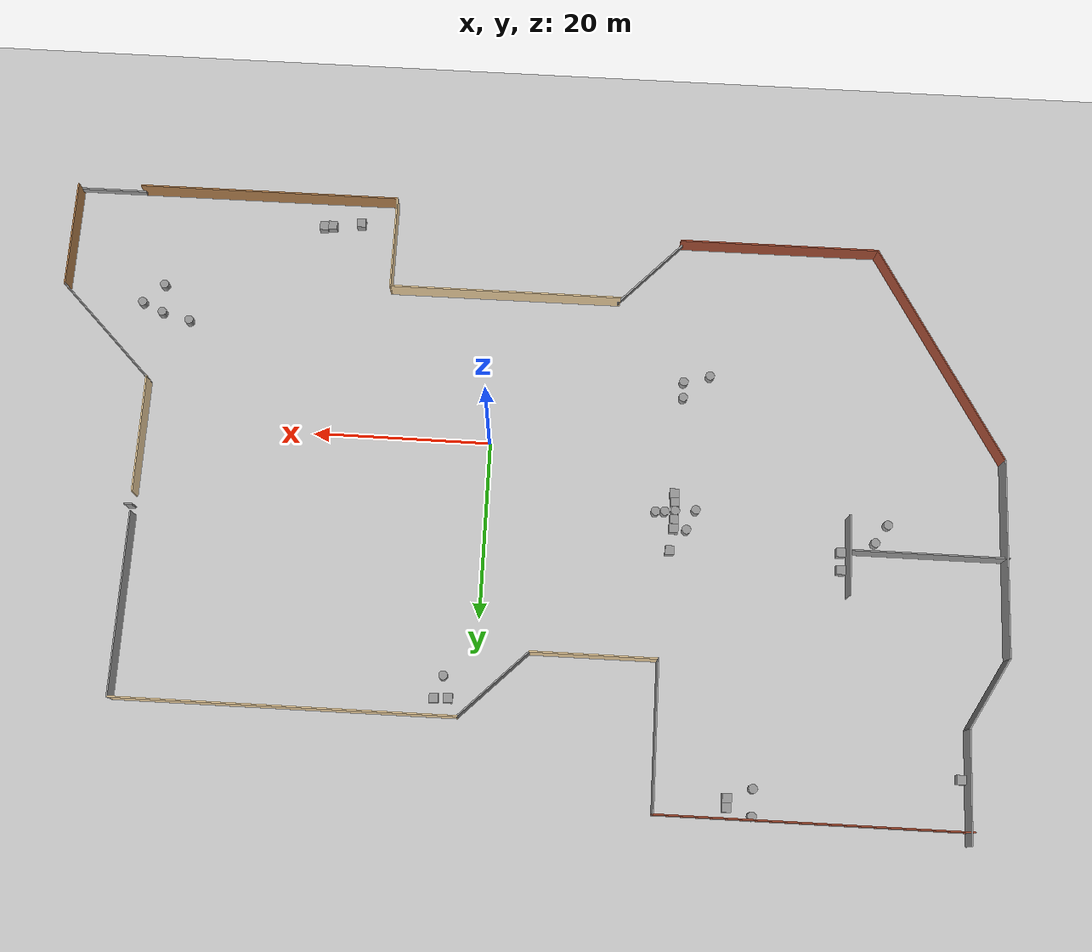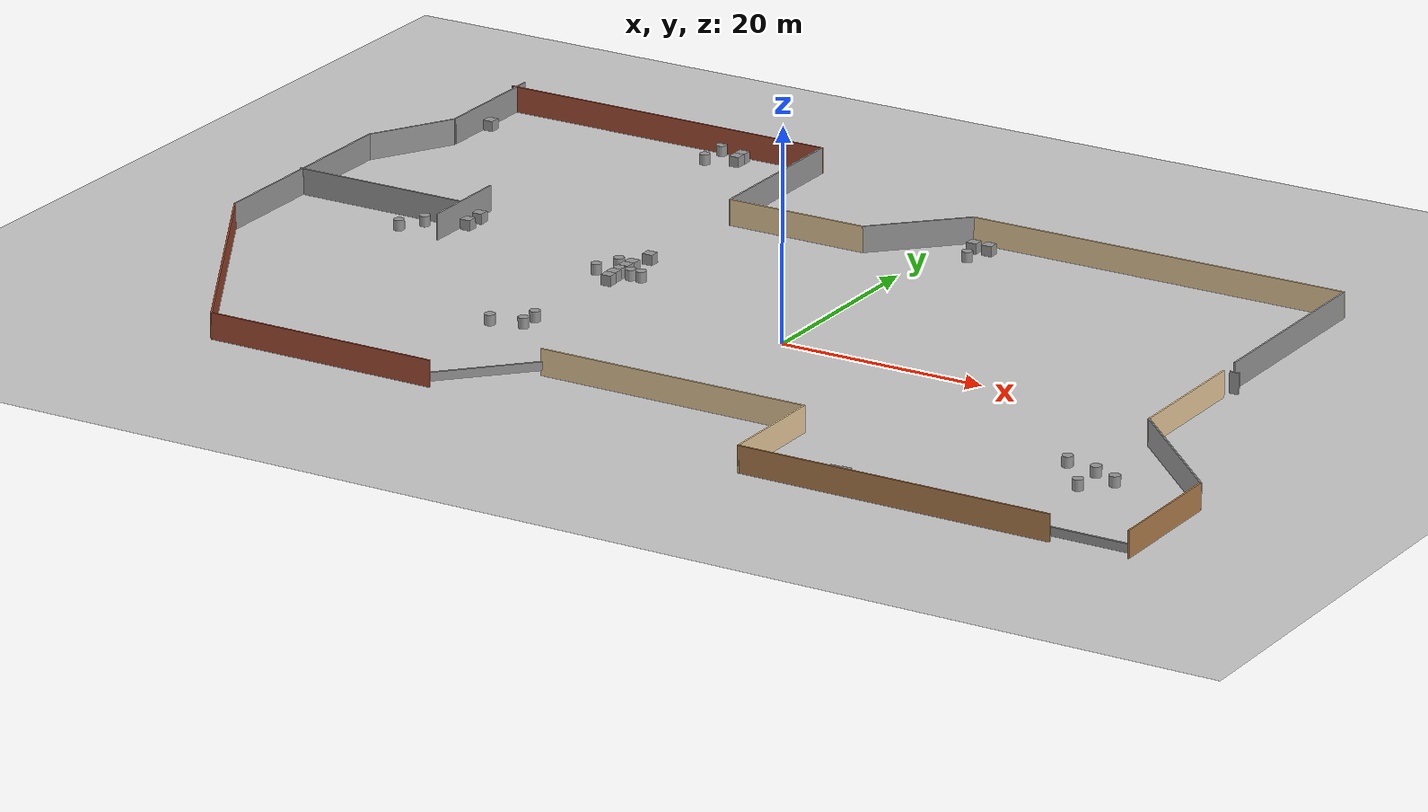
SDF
<sdf version="1.7">
 <world name="default">
  <light name="sun" type="directional">
   <pose>0 0 10 0 -0 0</pose>
   <diffuse>0.8 0.8 0.8 1</diffuse>
   <specular>0.2 0.2 0.2 1</specular>
   <attenuation>
    <range>1000</range>
    <constant>0.9</constant>
    <linear>0.01</linear>
    <quadratic>0.001</quadratic>
   </attenuation>
   <direction>-0.5 0.1 -0.9</direction>
   <spot><inner_angle>0</inner_angle><outer_angle>0</outer_angle><falloff>0</falloff></spot>
  </light>
  <model name="ground_plane">
   <static>1</static>
   <link name="link">
    <collision name="collision">
     <geometry><plane><normal>0 0 1</normal><size>100 100</size></plane></geometry>
     <surface><friction><ode><mu>100</mu><mu2>50</mu2></ode></friction></surface>
    </collision>
    <visual name="visual">
     <cast_shadows>0</cast_shadows>
     <geometry><plane><normal>0 0 1</normal><size>100 100</size></plane></geometry>
     <material>
      <script><uri>file://media/materials/scripts/gazebo.material</uri><name>Gazebo/Grey</name></script>
     </material>
    </visual>
   </link>
  </model>
  <gravity>0 0 -9.8</gravity>
  <magnetic_field>6e-06 2.3e-05 -4.2e-05</magnetic_field>
  <atmosphere type="adiabatic"/>
  <physics type="ode">
   <max_step_size>0.001</max_step_size>
   <real_time_factor>1</real_time_factor>
   <real_time_update_rate>1000</real_time_update_rate>
  </physics>
  <scene><ambient>0.4 0.4 0.4 1</ambient><background>0.7 0.7 0.7 1</background><shadows>1</shadows></scene>
  <audio><device>default</device></audio>
  <spherical_coordinates>
   <surface_model>EARTH_WGS84</surface_model>
   <latitude_deg>0</latitude_deg>
   <longitude_deg>0</longitude_deg>
   <elevation>0</elevation>
   <heading_deg>0</heading_deg>
  </spherical_coordinates>
  <model name="jzt_factory">
   <pose>-3.8406 6.50955 0 0 -0 0</pose>
   <link name="Door_0">
    <collision name="Door_0_Collision">
     <geometry><box><size>0.9 0.17 2</size></box></geometry>
     <pose>0 0 1 0 -0 0</pose>
    </collision>
    <visual name="Door_0_Visual">
     <pose>0 0 1 0 -0 0</pose>
     <geometry><box><size>0.9 0.17 2</size></box></geometry>
     <material>
      <script><uri>file://media/materials/scripts/gazebo.material</uri><name>Gazebo/Grey</name></script>
     </material>
    </visual>
    <pose>43.2584 3.11477 0 0 -0 0</pose>
   </link>
   <link name="Wall_0">
    <collision name="Wall_0_Collision">
     <geometry><box><size>12.25 0.15 2.5</size></box></geometry>
     <pose>0 0 1.25 0 -0 0</pose>
    </collision>
    <visual name="Wall_0_Visual">
     <pose>0 0 1.25 0 -0 0</pose>
     <geometry><box><size>12.25 0.15 2.5</size></box></geometry>
     <material>
      <script><uri>file://media/materials/scripts/gazebo.material</uri><name>Gazebo/Grey</name></script>
      <ambient>1 1 1 1</ambient>
     </material>
     <meta><layer>0</layer></meta>
    </visual>
    <pose>-48.9585 28.7667 0 0 -0 -1.5708</pose>
   </link>
   <link name="Wall_1">
    <collision name="Wall_1_Collision">
     <geometry><box><size>9 0.15 2.5</size></box></geometry>
     <pose>0 0 1.25 0 -0 0</pose>
    </collision>
    <visual name="Wall_1_Visual">
     <pose>0 0 1.25 0 -0 0</pose>
     <geometry><box><size>9 0.15 2.5</size></box></geometry>
     <material>
      <script><uri>file://media/materials/scripts/gazebo.material</uri><name>Gazebo/Grey</name></script>
      <ambient>1 1 1 1</ambient>
     </material>
     <meta><layer>0</layer></meta>
    </visual>
    <pose>-51.171 18.8845 0 0 -0 -2.0944</pose>
   </link>
   <link name="Wall_11">
    <collision name="Wall_11_Collision">
     <geometry><box><size>12.5 0.15 2.5</size></box></geometry>
     <pose>0 0 1.25 0 -0 0</pose>
    </collision>
    <visual name="Wall_11_Visual">
     <pose>0 0 1.25 0 -0 0</pose>
     <geometry><box><size>12.5 0.15 2.5</size></box></geometry>
     <material>
      <script><uri>file://media/materials/scripts/gazebo.material</uri><name>Gazebo/Wood</name></script>
      <ambient>1 1 1 1</ambient>
     </material>
     <meta><layer>0</layer></meta>
    </visual>
    <pose>53.5517 -28.4214 0 0 -0 1.5708</pose>
   </link>
   <link name="Wall_12">
    <collision name="Wall_12_Collision">
     <geometry><box><size>15.25 0.15 2.5</size></box></geometry>
     <pose>0 0 1.25 0 -0 0</pose>
    </collision>
    <visual name="Wall_12_Visual">
     <pose>0 0 1.25 0 -0 0</pose>
     <geometry><box><size>15.25 0.15 2.5</size></box></geometry>
     <material>
      <script><uri>file://media/materials/scripts/gazebo.material</uri><name>Gazebo/Grey</name></script>
      <ambient>1 1 1 1</ambient>
     </material>
     <meta><layer>0</layer></meta>
    </visual>
    <pose>48.2131 -16.9078 0 0 -0 2.35619</pose>
   </link>
   <link name="Wall_13">
    <collision name="Wall_13_Collision">
     <geometry><box><size>13.5 0.15 2.5</size></box></geometry>
     <pose>0 0 1.25 0 -0 0</pose>
    </collision>
    <visual name="Wall_13_Visual">
     <pose>0 0 1.25 0 -0 0</pose>
     <geometry><box><size>13.5 0.15 2.5</size></box></geometry>
     <material>
      <script><uri>file://media/materials/scripts/gazebo.material</uri><name>Gazebo/Grey</name></script>
      <ambient>0.921569 0.807843 0.615686 1</ambient>
     </material>
     <meta><layer>0</layer></meta>
    </visual>
    <pose>42.8744 -4.89413 0 0 -0 1.5708</pose>
   </link>
   <link name="Wall_16">
    <collision name="Wall_16_Collision">
     <geometry><box><size>20.5 0.15 2.5</size></box></geometry>
     <pose>0 0 1.25 0 -0 0</pose>
    </collision>
    <visual name="Wall_16_Visual">
     <pose>0 0 1.25 0 -0 0</pose>
     <geometry><box><size>20.5 0.15 2.5</size></box></geometry>
     <material>
      <script><uri>file://media/materials/scripts/gazebo.material</uri><name>Gazebo/Grey</name></script>
      <ambient>1 1 1 1</ambient>
     </material>
     <meta><layer>0</layer></meta>
    </visual>
    <pose>42.7905 14.2255 0 0 -0 1.5708</pose>
   </link>
   <link name="Wall_17">
    <collision name="Wall_17_Collision">
     <geometry><box><size>37.5 0.15 2.5</size></box></geometry>
     <pose>0 0 1.25 0 -0 0</pose>
    </collision>
    <visual name="Wall_17_Visual">
     <pose>0 0 1.25 0 -0 0</pose>
     <geometry><box><size>37.5 0.15 2.5</size></box></geometry>
     <material>
      <script><uri>file://media/materials/scripts/gazebo.material</uri><name>Gazebo/Grey</name></script>
      <ambient>0.921569 0.807843 0.615686 1</ambient>
     </material>
     <meta><layer>0</layer></meta>
    </visual>
    <pose>24.1155 24.4005 0 0 -0 3.14159</pose>
   </link>
   <link name="Wall_18">
    <collision name="Wall_18_Collision">
     <geometry><box><size>10.5 0.15 2.5</size></box></geometry>
     <pose>0 0 1.25 0 -0 0</pose>
    </collision>
    <visual name="Wall_18_Visual">
     <pose>0 0 1.25 0 -0 0</pose>
     <geometry><box><size>10.5 0.15 2.5</size></box></geometry>
     <material>
      <script><uri>file://media/materials/scripts/gazebo.material</uri><name>Gazebo/Grey</name></script>
      <ambient>1 1 1 1</ambient>
     </material>
     <meta><layer>0</layer></meta>
    </visual>
    <pose>1.78121 20.7413 0 0 -0 -2.35619</pose>
   </link>
   <link name="Wall_19">
    <collision name="Wall_19_Collision">
     <geometry><box><size>14 0.15 2.5</size></box></geometry>
     <pose>0 0 1.25 0 -0 0</pose>
    </collision>
    <visual name="Wall_19_Visual">
     <pose>0 0 1.25 0 -0 0</pose>
     <geometry><box><size>14 0.15 2.5</size></box></geometry>
     <material>
      <script><uri>file://media/materials/scripts/gazebo.material</uri><name>Gazebo/Grey</name></script>
      <ambient>0.921569 0.807843 0.615686 1</ambient>
     </material>
     <meta><layer>0</layer></meta>
    </visual>
    <pose>-8.80307 17.082 0 0 -0 3.14159</pose>
   </link>
   <link name="Wall_2">
    <collision name="Wall_2_Collision">
     <geometry><box><size>22.25 0.15 2.5</size></box></geometry>
     <pose>0 0 1.25 0 -0 0</pose>
    </collision>
    <visual name="Wall_2_Visual">
     <pose>0 0 1.25 0 -0 0</pose>
     <geometry><box><size>22.25 0.15 2.5</size></box></geometry>
     <material>
      <script><uri>file://media/materials/scripts/gazebo.material</uri><name>Gazebo/Grey</name></script>
      <ambient>1 1 1 1</ambient>
     </material>
     <meta><layer>0</layer></meta>
    </visual>
    <pose>-53.3835 4.00238 0 0 -0 -1.5708</pose>
   </link>
   <link name="Wall_20">
    <collision name="Wall_20_Collision">
     <geometry><box><size>16.5 0.15 2.5</size></box></geometry>
     <pose>0 0 1.25 0 -0 0</pose>
    </collision>
    <visual name="Wall_20_Visual">
     <pose>0 0 1.25 0 -0 0</pose>
     <geometry><box><size>16.5 0.15 2.5</size></box></geometry>
     <material>
      <script><uri>file://media/materials/scripts/gazebo.material</uri><name>Gazebo/Grey</name></script>
      <ambient>1 1 1 1</ambient>
     </material>
     <meta><layer>0</layer></meta>
    </visual>
    <pose>-15.7281 25.257 0 0 -0 1.5708</pose>
   </link>
   <link name="Wall_21">
    <collision name="Wall_21_Collision">
     <geometry><box><size>33.75 0.15 2.5</size></box></geometry>
     <pose>0 0 1.25 0 -0 0</pose>
    </collision>
    <visual name="Wall_21_Visual">
     <pose>0 0 1.25 0 -0 0</pose>
     <geometry><box><size>33.75 0.15 2.5</size></box></geometry>
     <material>
      <script><uri>file://media/materials/scripts/gazebo.material</uri><name>Gazebo/Bricks</name></script>
      <ambient>1 1 1 1</ambient>
     </material>
     <meta><layer>0</layer></meta>
    </visual>
    <pose>-32.5281 33.432 0 0 -0 3.14159</pose>
   </link>
   <link name="Wall_23">
    <collision name="Wall_23_Collision">
     <geometry><box><size>17.25 0.15 2.5</size></box></geometry>
     <pose>0 0 1.25 0 -0 0</pose>
    </collision>
    <visual name="Wall_23_Visual">
     <pose>0 0 1.25 0 -0 0</pose>
     <geometry><box><size>17.25 0.15 2.5</size></box></geometry>
     <material>
      <script><uri>file://media/materials/scripts/gazebo.material</uri><name>Gazebo/Grey</name></script>
      <ambient>1 1 1 1</ambient>
     </material>
     <meta><layer>0</layer></meta>
    </visual>
    <pose>-45.0328 4.01717 0 0 -0 0</pose>
   </link>
   <link name="Wall_25">
    <collision name="Wall_25_Collision">
     <geometry><box><size>9 0.15 2.5</size></box></geometry>
     <pose>0 0 1.25 0 -0 0</pose>
    </collision>
    <visual name="Wall_25_Visual">
     <pose>0 0 1.25 0 -0 0</pose>
     <geometry><box><size>9 0.15 2.5</size></box></geometry>
     <material>
      <script><uri>file://media/materials/scripts/gazebo.material</uri><name>Gazebo/Grey</name></script>
      <ambient>1 1 1 1</ambient>
     </material>
     <meta><layer>0</layer></meta>
    </visual>
    <pose>-36.2572 4.54235 0 0 -0 -1.5708</pose>
   </link>
   <link name="Wall_3">
    <collision name="Wall_3_Collision">
     <geometry><box><size>28.25 0.15 2.5</size></box></geometry>
     <pose>0 0 1.25 0 -0 0</pose>
    </collision>
    <visual name="Wall_3_Visual">
     <pose>0 0 1.25 0 -0 0</pose>
     <geometry><box><size>28.25 0.15 2.5</size></box></geometry>
     <material>
      <script><uri>file://media/materials/scripts/gazebo.material</uri><name>Gazebo/Bricks</name></script>
      <ambient>1 1 1 1</ambient>
     </material>
     <meta><layer>0</layer></meta>
    </visual>
    <pose>-46.3585 -19.2153 0 0 -0 -1.0472</pose>
   </link>
   <link name="Wall_4">
    <collision name="Wall_4_Collision">
     <geometry><box><size>22.75 0.15 2.5</size></box></geometry>
     <pose>0 0 1.25 0 -0 0</pose>
    </collision>
    <visual name="Wall_4_Visual">
     <pose>0 0 1.25 0 -0 0</pose>
     <geometry><box><size>22.75 0.15 2.5</size></box></geometry>
     <material>
      <script><uri>file://media/materials/scripts/gazebo.material</uri><name>Gazebo/Bricks</name></script>
      <ambient>1 1 1 1</ambient>
     </material>
     <meta><layer>0</layer></meta>
    </visual>
    <pose>-28.0335 -31.3829 0 0 -0 0</pose>
   </link>
   <link name="Wall_7">
    <collision name="Wall_7_Collision">
     <geometry><box><size>26.5 0.15 2.5</size></box></geometry>
     <pose>0 0 1.25 0 -0 0</pose>
    </collision>
    <visual name="Wall_7_Visual">
     <pose>0 0 1.25 0 -0 0</pose>
     <geometry><box><size>26.5 0.15 2.5</size></box></geometry>
     <material>
      <script><uri>file://media/materials/scripts/gazebo.material</uri><name>Gazebo/Grey</name></script>
      <ambient>0.921569 0.807843 0.615686 1</ambient>
     </material>
     <meta><layer>0</layer></meta>
    </visual>
    <pose>3.19918 -23.9667 0 0 -0 0</pose>
   </link>
   <link name="Wall_8">
    <collision name="Wall_8_Collision">
     <geometry><box><size>11 0.15 2.5</size></box></geometry>
     <pose>0 0 1.25 0 -0 0</pose>
    </collision>
    <visual name="Wall_8_Visual">
     <pose>0 0 1.25 0 -0 0</pose>
     <geometry><box><size>11 0.15 2.5</size></box></geometry>
     <material>
      <script><uri>file://media/materials/scripts/gazebo.material</uri><name>Gazebo/Grey</name></script>
      <ambient>0.921569 0.807843 0.615686 1</ambient>
     </material>
     <meta><layer>0</layer></meta>
    </visual>
    <pose>16.3742 -29.3917 0 0 -0 -1.5708</pose>
   </link>
   <link name="Wall_9">
    <collision name="Wall_9_Collision">
     <geometry><box><size>30 0.15 2.5</size></box></geometry>
     <pose>0 0 1.25 0 -0 0</pose>
    </collision>
    <visual name="Wall_9_Visual">
     <pose>0 0 1.25 0 -0 0</pose>
     <geometry><box><size>30 0.15 2.5</size></box></geometry>
     <material>
      <script><uri>file://media/materials/scripts/gazebo.material</uri><name>Gazebo/Wood</name></script>
      <ambient>1 1 1 1</ambient>
     </material>
     <meta><layer>0</layer></meta>
    </visual>
    <pose>31.2992 -34.8167 0 0 -0 0</pose>
   </link>
   <link name="Window_0">
    <collision name="Window_0_Collision">
     <geometry><box><size>10.3527 0.2 0.8</size></box></geometry>
     <pose>0 0 0.4 0 -0 0</pose>
    </collision>
    <visual name="Window_0_Visual">
     <pose>0 0 0.4 0 -0 0</pose>
     <geometry><box><size>10.3527 0.2 0.8</size></box></geometry>
     <material>
      <script><uri>file://media/materials/scripts/gazebo.material</uri><name>Gazebo/Grey</name></script>
     </material>
    </visual>
    <pose>-13.3523 -27.5737 0.5 0 0 -2.33536</pose>
   </link>
   <link name="Window_1">
    <collision name="Window_1_Collision">
     <geometry><box><size>7.53749 0.2 0.8</size></box></geometry>
     <pose>0 0 0.4 0 -0 0</pose>
    </collision>
    <visual name="Window_1_Visual">
     <pose>0 0 0.4 0 -0 0</pose>
     <geometry><box><size>7.53749 0.2 0.8</size></box></geometry>
     <material>
      <script><uri>file://media/materials/scripts/gazebo.material</uri><name>Gazebo/Grey</name></script>
     </material>
    </visual>
    <pose>49.7012 -34.6096 0.5 0 -0 0</pose>
   </link>
   <static>1</static>
  </model>
  <model name="unit_cylinder">
   <pose>35.4086 -12.6376 0.499994 -2e-06 -0 -0</pose>
   <link name="link">
    <inertial>
     <mass>1</mass>
     <inertia><ixx>0.145833</ixx><ixy>0</ixy><ixz>0</ixz><iyy>0.145833</iyy><iyz>0</iyz><izz>0.125</izz></inertia>
    </inertial>
    <collision name="collision">
     <geometry><cylinder><radius>0.5</radius><length>1</length></cylinder></geometry>
    </collision>
    <visual name="visual">
     <geometry><cylinder><radius>0.5</radius><length>1</length></cylinder></geometry>
     <material>
      <script><name>Gazebo/Grey</name><uri>file://media/materials/scripts/gazebo.material</uri></script>
     </material>
    </visual>
   </link>
  </model>
  <model name="unit_cylinder_0">
   <pose>38.5913 -13.4528 0.499996 2e-06 -0 0</pose>
   <link name="link">
    <inertial>
     <mass>1</mass>
     <inertia><ixx>0.145833</ixx><ixy>0</ixy><ixz>0</ixz><iyy>0.145833</iyy><iyz>0</iyz><izz>0.125</izz></inertia>
    </inertial>
    <collision name="collision">
     <geometry><cylinder><radius>0.5</radius><length>1</length></cylinder></geometry>
    </collision>
    <visual name="visual">
     <geometry><cylinder><radius>0.5</radius><length>1</length></cylinder></geometry>
     <material>
      <script><name>Gazebo/Grey</name><uri>file://media/materials/scripts/gazebo.material</uri></script>
     </material>
    </visual>
   </link>
  </model>
  <model name="unit_cylinder_1">
   <pose>38.7171 -16.8222 0.499994 -2e-06 -0 -0</pose>
   <link name="link">
    <inertial>
     <mass>1</mass>
     <inertia><ixx>0.145833</ixx><ixy>0</ixy><ixz>0</ixz><iyy>0.145833</iyy><iyz>0</iyz><izz>0.125</izz></inertia>
    </inertial>
    <collision name="collision">
     <geometry><cylinder><radius>0.5</radius><length>1</length></cylinder></geometry>
    </collision>
    <visual name="visual">
     <geometry><cylinder><radius>0.5</radius><length>1</length></cylinder></geometry>
     <material>
      <script><name>Gazebo/Grey</name><uri>file://media/materials/scripts/gazebo.material</uri></script>
     </material>
    </visual>
   </link>
  </model>
  <model name="unit_cylinder_2">
   <pose>40.9845 -14.5363 0.499996 2e-06 -0 0</pose>
   <link name="link">
    <inertial>
     <mass>1</mass>
     <inertia><ixx>0.145833</ixx><ixy>0</ixy><ixz>0</ixz><iyy>0.145833</iyy><iyz>0</iyz><izz>0.125</izz></inertia>
    </inertial>
    <collision name="collision">
     <geometry><cylinder><radius>0.5</radius><length>1</length></cylinder></geometry>
    </collision>
    <visual name="visual">
     <geometry><cylinder><radius>0.5</radius><length>1</length></cylinder></geometry>
     <material>
      <script><name>Gazebo/Grey</name><uri>file://media/materials/scripts/gazebo.material</uri></script>
     </material>
    </visual>
   </link>
  </model>
  <model name="unit_box">
   <pose>-20.8558 8.81679 0.499995 -1e-05 0 0</pose>
   <link name="link">
    <inertial>
     <mass>1</mass>
     <inertia>
      <ixx>0.166667</ixx>
      <ixy>0</ixy>
      <ixz>0</ixz>
      <iyy>0.166667</iyy>
      <iyz>0</iyz>
      <izz>0.166667</izz>
     </inertia>
    </inertial>
    <collision name="collision"><geometry><box><size>1 1 1</size></box></geometry></collision>
    <visual name="visual">
     <geometry><box><size>1 1 1</size></box></geometry>
     <material>
      <script><name>Gazebo/Grey</name><uri>file://media/materials/scripts/gazebo.material</uri></script>
     </material>
    </visual>
   </link>
  </model>
  <model name="unit_box_0">
   <pose>-20.8887 7.80775 0.499995 0 1e-05 -0.000245</pose>
   <link name="link">
    <inertial>
     <mass>1</mass>
     <inertia>
      <ixx>0.166667</ixx>
      <ixy>0</ixy>
      <ixz>0</ixz>
      <iyy>0.166667</iyy>
      <iyz>0</iyz>
      <izz>0.166667</izz>
     </inertia>
    </inertial>
    <collision name="collision"><geometry><box><size>1 1 1</size></box></geometry></collision>
    <visual name="visual">
     <geometry><box><size>1 1 1</size></box></geometry>
     <material>
      <script><name>Gazebo/Grey</name><uri>file://media/materials/scripts/gazebo.material</uri></script>
     </material>
    </visual>
   </link>
  </model>
  <model name="unit_cylinder_3">
   <pose>-20.9914 6.8077 0.499993 -3e-06 -1e-06 -0.002975</pose>
   <link name="link">
    <inertial>
     <mass>1</mass>
     <inertia><ixx>0.145833</ixx><ixy>0</ixy><ixz>0</ixz><iyy>0.145833</iyy><iyz>0</iyz><izz>0.125</izz></inertia>
    </inertial>
    <collision name="collision">
     <geometry><cylinder><radius>0.5</radius><length>1</length></cylinder></geometry>
    </collision>
    <visual name="visual">
     <geometry><cylinder><radius>0.5</radius><length>1</length></cylinder></geometry>
     <material>
      <script><name>Gazebo/Grey</name><uri>file://media/materials/scripts/gazebo.material</uri></script>
     </material>
    </visual>
   </link>
  </model>
  <model name="unit_box_1">
   <pose>-20.9273 5.80825 0.499995 -0 -1e-05 0.009674</pose>
   <link name="link">
    <inertial>
     <mass>1</mass>
     <inertia>
      <ixx>0.166667</ixx>
      <ixy>0</ixy>
      <ixz>0</ixz>
      <iyy>0.166667</iyy>
      <iyz>0</iyz>
      <izz>0.166667</izz>
     </inertia>
    </inertial>
    <collision name="collision"><geometry><box><size>1 1 1</size></box></geometry></collision>
    <visual name="visual">
     <geometry><box><size>1 1 1</size></box></geometry>
     <material>
      <script><name>Gazebo/Grey</name><uri>file://media/materials/scripts/gazebo.material</uri></script>
     </material>
    </visual>
   </link>
  </model>
  <model name="unit_box_2">
   <pose>-20.8593 4.80886 0.499995 -0 -1e-05 0.009668</pose>
   <link name="link">
    <inertial>
     <mass>1</mass>
     <inertia>
      <ixx>0.166667</ixx>
      <ixy>0</ixy>
      <ixz>0</ixz>
      <iyy>0.166667</iyy>
      <iyz>0</iyz>
      <izz>0.166667</izz>
     </inertia>
    </inertial>
    <collision name="collision"><geometry><box><size>1 1 1</size></box></geometry></collision>
    <visual name="visual">
     <geometry><box><size>1 1 1</size></box></geometry>
     <material>
      <script><name>Gazebo/Grey</name><uri>file://media/materials/scripts/gazebo.material</uri></script>
     </material>
    </visual>
   </link>
  </model>
  <model name="unit_box_3">
   <pose>-20.5188 11.3104 0.499995 0 -1e-05 0</pose>
   <link name="link">
    <inertial>
     <mass>1</mass>
     <inertia>
      <ixx>0.166667</ixx>
      <ixy>0</ixy>
      <ixz>0</ixz>
      <iyy>0.166667</iyy>
      <iyz>0</iyz>
      <izz>0.166667</izz>
     </inertia>
    </inertial>
    <collision name="collision"><geometry><box><size>1 1 1</size></box></geometry></collision>
    <visual name="visual">
     <geometry><box><size>1 1 1</size></box></geometry>
     <material>
      <script><name>Gazebo/Grey</name><uri>file://media/materials/scripts/gazebo.material</uri></script>
     </material>
    </visual>
   </link>
  </model>
  <model name="unit_cylinder_4">
   <pose>-21.4647 -6.41493 0.499996 3e-06 1e-06 -0</pose>
   <link name="link">
    <inertial>
     <mass>1</mass>
     <inertia><ixx>0.145833</ixx><ixy>0</ixy><ixz>0</ixz><iyy>0.145833</iyy><iyz>0</iyz><izz>0.125</izz></inertia>
    </inertial>
    <collision name="collision">
     <geometry><cylinder><radius>0.5</radius><length>1</length></cylinder></geometry>
    </collision>
    <visual name="visual">
     <geometry><cylinder><radius>0.5</radius><length>1</length></cylinder></geometry>
     <material>
      <script><name>Gazebo/Grey</name><uri>file://media/materials/scripts/gazebo.material</uri></script>
     </material>
    </visual>
   </link>
  </model>
  <model name="unit_cylinder_5">
   <pose>-21.4839 -8.29517 0.499993 -3e-06 -1e-06 -0</pose>
   <link name="link">
    <inertial>
     <mass>1</mass>
     <inertia><ixx>0.145833</ixx><ixy>0</ixy><ixz>0</ixz><iyy>0.145833</iyy><iyz>0</iyz><izz>0.125</izz></inertia>
    </inertial>
    <collision name="collision">
     <geometry><cylinder><radius>0.5</radius><length>1</length></cylinder></geometry>
    </collision>
    <visual name="visual">
     <geometry><cylinder><radius>0.5</radius><length>1</length></cylinder></geometry>
     <material>
      <script><name>Gazebo/Grey</name><uri>file://media/materials/scripts/gazebo.material</uri></script>
     </material>
    </visual>
   </link>
  </model>
  <model name="unit_cylinder_6">
   <pose>-24.4406 -9.14898 0.499996 3e-06 1e-06 -0</pose>
   <link name="link">
    <inertial>
     <mass>1</mass>
     <inertia><ixx>0.145833</ixx><ixy>0</ixy><ixz>0</ixz><iyy>0.145833</iyy><iyz>0</iyz><izz>0.125</izz></inertia>
    </inertial>
    <collision name="collision">
     <geometry><cylinder><radius>0.5</radius><length>1</length></cylinder></geometry>
    </collision>
    <visual name="visual">
     <geometry><cylinder><radius>0.5</radius><length>1</length></cylinder></geometry>
     <material>
      <script><name>Gazebo/Grey</name><uri>file://media/materials/scripts/gazebo.material</uri></script>
     </material>
    </visual>
   </link>
  </model>
  <model name="unit_box_4">
   <pose>-52.2228 34.4965 0.500807 0.001575 -0 0</pose>
   <link name="link">
    <inertial>
     <mass>1</mass>
     <inertia>
      <ixx>0.166667</ixx>
      <ixy>0</ixy>
      <ixz>0</ixz>
      <iyy>0.166667</iyy>
      <iyz>0</iyz>
      <izz>0.166667</izz>
     </inertia>
    </inertial>
    <collision name="collision"><geometry><box><size>1 1 1</size></box></geometry></collision>
    <visual name="visual">
     <geometry><box><size>1 1 1</size></box></geometry>
     <material>
      <script><name>Gazebo/Grey</name><uri>file://media/materials/scripts/gazebo.material</uri></script>
     </material>
    </visual>
   </link>
  </model>
  <model name="unit_cylinder_7">
   <pose>-30.103 39.5448 0.499994 -4e-06 -3e-06 -0</pose>
   <link name="link">
    <inertial>
     <mass>1</mass>
     <inertia><ixx>0.145833</ixx><ixy>0</ixy><ixz>0</ixz><iyy>0.145833</iyy><iyz>0</iyz><izz>0.125</izz></inertia>
    </inertial>
    <collision name="collision">
     <geometry><cylinder><radius>0.5</radius><length>1</length></cylinder></geometry>
    </collision>
    <visual name="visual">
     <geometry><cylinder><radius>0.5</radius><length>1</length></cylinder></geometry>
     <material>
      <script><name>Gazebo/Grey</name><uri>file://media/materials/scripts/gazebo.material</uri></script>
     </material>
    </visual>
   </link>
  </model>
  <model name="unit_cylinder_8">
   <pose>-30.1711 36.6657 0.499994 -3e-06 -1e-06 -0</pose>
   <link name="link">
    <inertial>
     <mass>1</mass>
     <inertia><ixx>0.145833</ixx><ixy>0</ixy><ixz>0</ixz><iyy>0.145833</iyy><iyz>0</iyz><izz>0.125</izz></inertia>
    </inertial>
    <collision name="collision">
     <geometry><cylinder><radius>0.5</radius><length>1</length></cylinder></geometry>
    </collision>
    <visual name="visual">
     <geometry><cylinder><radius>0.5</radius><length>1</length></cylinder></geometry>
     <material>
      <script><name>Gazebo/Grey</name><uri>file://media/materials/scripts/gazebo.material</uri></script>
     </material>
    </visual>
   </link>
  </model>
  <model name="unit_cylinder_9">
   <pose>-19.831 6.91714 0.499992 -3e-06 2e-06 0</pose>
   <link name="link">
    <inertial>
     <mass>1</mass>
     <inertia><ixx>0.145833</ixx><ixy>0</ixy><ixz>0</ixz><iyy>0.145833</iyy><iyz>0</iyz><izz>0.125</izz></inertia>
    </inertial>
    <collision name="collision">
     <geometry><cylinder><radius>0.5</radius><length>1</length></cylinder></geometry>
    </collision>
    <visual name="visual">
     <geometry><cylinder><radius>0.5</radius><length>1</length></cylinder></geometry>
     <material>
      <script><name>Gazebo/Grey</name><uri>file://media/materials/scripts/gazebo.material</uri></script>
     </material>
    </visual>
   </link>
  </model>
  <model name="unit_cylinder_10">
   <pose>-18.8036 6.98907 0.499997 3e-06 2e-06 0</pose>
   <link name="link">
    <inertial>
     <mass>1</mass>
     <inertia><ixx>0.145833</ixx><ixy>0</ixy><ixz>0</ixz><iyy>0.145833</iyy><iyz>0</iyz><izz>0.125</izz></inertia>
    </inertial>
    <collision name="collision">
     <geometry><cylinder><radius>0.5</radius><length>1</length></cylinder></geometry>
    </collision>
    <visual name="visual">
     <geometry><cylinder><radius>0.5</radius><length>1</length></cylinder></geometry>
     <material>
      <script><name>Gazebo/Grey</name><uri>file://media/materials/scripts/gazebo.material</uri></script>
     </material>
    </visual>
   </link>
  </model>
  <model name="unit_cylinder_11">
   <pose>-22.2804 8.89057 0.499994 -3e-06 -2e-06 0</pose>
   <link name="link">
    <inertial>
     <mass>1</mass>
     <inertia><ixx>0.145833</ixx><ixy>0</ixy><ixz>0</ixz><iyy>0.145833</iyy><iyz>0</iyz><izz>0.125</izz></inertia>
    </inertial>
    <collision name="collision">
     <geometry><cylinder><radius>0.5</radius><length>1</length></cylinder></geometry>
    </collision>
    <visual name="visual">
     <geometry><cylinder><radius>0.5</radius><length>1</length></cylinder></geometry>
     <material>
      <script><name>Gazebo/Grey</name><uri>file://media/materials/scripts/gazebo.material</uri></script>
     </material>
    </visual>
   </link>
  </model>
  <model name="unit_cylinder_12">
   <pose>-23.2616 6.59278 0.499997 4e-06 2e-06 -0</pose>
   <link name="link">
    <inertial>
     <mass>1</mass>
     <inertia><ixx>0.145833</ixx><ixy>0</ixy><ixz>0</ixz><iyy>0.145833</iyy><iyz>0</iyz><izz>0.125</izz></inertia>
    </inertial>
    <collision name="collision">
     <geometry><cylinder><radius>0.5</radius><length>1</length></cylinder></geometry>
    </collision>
    <visual name="visual">
     <geometry><cylinder><radius>0.5</radius><length>1</length></cylinder></geometry>
     <material>
      <script><name>Gazebo/Grey</name><uri>file://media/materials/scripts/gazebo.material</uri></script>
     </material>
    </visual>
   </link>
  </model>
  <model name="unit_box_5">
   <pose>-27.4108 38.7602 0.499995 0 -1e-05 -0.000528</pose>
   <link name="link">
    <inertial>
     <mass>1</mass>
     <inertia>
      <ixx>0.166667</ixx>
      <ixy>0</ixy>
      <ixz>0</ixz>
      <iyy>0.166667</iyy>
      <iyz>0</iyz>
      <izz>0.166667</izz>
     </inertia>
    </inertial>
    <collision name="collision"><geometry><box><size>1 1 1</size></box></geometry></collision>
    <visual name="visual">
     <geometry><box><size>1 1 1</size></box></geometry>
     <material>
      <script><name>Gazebo/Grey</name><uri>file://media/materials/scripts/gazebo.material</uri></script>
     </material>
    </visual>
   </link>
  </model>
  <model name="unit_box_6">
   <pose>-27.4224 37.7602 0.5 0 0 -0.000533</pose>
   <link name="link">
    <inertial>
     <mass>1</mass>
     <inertia>
      <ixx>0.166667</ixx>
      <ixy>0</ixy>
      <ixz>0</ixz>
      <iyy>0.166667</iyy>
      <iyz>0</iyz>
      <izz>0.166667</izz>
     </inertia>
    </inertial>
    <collision name="collision"><geometry><box><size>1 1 1</size></box></geometry></collision>
    <visual name="visual">
     <geometry><box><size>1 1 1</size></box></geometry>
     <material>
      <script><name>Gazebo/Grey</name><uri>file://media/materials/scripts/gazebo.material</uri></script>
     </material>
    </visual>
   </link>
  </model>
  <model name="unit_box_7">
   <pose>-39.3563 10.5315 0.499995 -1e-05 0 0</pose>
   <link name="link">
    <inertial>
     <mass>1</mass>
     <inertia>
      <ixx>0.166667</ixx>
      <ixy>0</ixy>
      <ixz>0</ixz>
      <iyy>0.166667</iyy>
      <iyz>0</iyz>
      <izz>0.166667</izz>
     </inertia>
    </inertial>
    <collision name="collision"><geometry><box><size>1 1 1</size></box></geometry></collision>
    <visual name="visual">
     <geometry><box><size>1 1 1</size></box></geometry>
     <material>
      <script><name>Gazebo/Grey</name><uri>file://media/materials/scripts/gazebo.material</uri></script>
     </material>
    </visual>
   </link>
  </model>
  <model name="unit_box_8">
   <pose>-39.3667 12.5136 0.499995 0 -1e-05 0</pose>
   <link name="link">
    <inertial>
     <mass>1</mass>
     <inertia>
      <ixx>0.166667</ixx>
      <ixy>0</ixy>
      <ixz>0</ixz>
      <iyy>0.166667</iyy>
      <iyz>0</iyz>
      <izz>0.166667</izz>
     </inertia>
    </inertial>
    <collision name="collision"><geometry><box><size>1 1 1</size></box></geometry></collision>
    <visual name="visual">
     <geometry><box><size>1 1 1</size></box></geometry>
     <material>
      <script><name>Gazebo/Grey</name><uri>file://media/materials/scripts/gazebo.material</uri></script>
     </material>
    </visual>
   </link>
  </model>
  <model name="unit_cylinder_13">
   <pose>-43.1663 9.263 0.499996 3e-06 1e-06 -0</pose>
   <link name="link">
    <inertial>
     <mass>1</mass>
     <inertia><ixx>0.145833</ixx><ixy>0</ixy><ixz>0</ixz><iyy>0.145833</iyy><iyz>0</iyz><izz>0.125</izz></inertia>
    </inertial>
    <collision name="collision">
     <geometry><cylinder><radius>0.5</radius><length>1</length></cylinder></geometry>
    </collision>
    <visual name="visual">
     <geometry><cylinder><radius>0.5</radius><length>1</length></cylinder></geometry>
     <material>
      <script><name>Gazebo/Grey</name><uri>file://media/materials/scripts/gazebo.material</uri></script>
     </material>
    </visual>
   </link>
  </model>
  <model name="unit_cylinder_14">
   <pose>-44.5693 7.16095 0.499993 -0 -0 -0</pose>
   <link name="link">
    <inertial>
     <mass>1</mass>
     <inertia><ixx>0.145833</ixx><ixy>0</ixy><ixz>0</ixz><iyy>0.145833</iyy><iyz>0</iyz><izz>0.125</izz></inertia>
    </inertial>
    <collision name="collision">
     <geometry><cylinder><radius>0.5</radius><length>1</length></cylinder></geometry>
    </collision>
    <visual name="visual">
     <geometry><cylinder><radius>0.5</radius><length>1</length></cylinder></geometry>
     <material>
      <script><name>Gazebo/Grey</name><uri>file://media/materials/scripts/gazebo.material</uri></script>
     </material>
    </visual>
   </link>
  </model>
  <model name="unit_box_9">
   <pose>2.77085 28.8799 0.499995 -1e-05 0 0</pose>
   <link name="link">
    <inertial>
     <mass>1</mass>
     <inertia>
      <ixx>0.166667</ixx>
      <ixy>0</ixy>
      <ixz>0</ixz>
      <iyy>0.166667</iyy>
      <iyz>0</iyz>
      <izz>0.166667</izz>
     </inertia>
    </inertial>
    <collision name="collision"><geometry><box><size>1 1 1</size></box></geometry></collision>
    <visual name="visual">
     <geometry><box><size>1 1 1</size></box></geometry>
     <material>
      <script><name>Gazebo/Grey</name><uri>file://media/materials/scripts/gazebo.material</uri></script>
     </material>
    </visual>
   </link>
  </model>
  <model name="unit_box_10">
   <pose>4.29537 28.9564 0.499995 0 -1e-05 0</pose>
   <link name="link">
    <inertial>
     <mass>1</mass>
     <inertia>
      <ixx>0.166667</ixx>
      <ixy>0</ixy>
      <ixz>0</ixz>
      <iyy>0.166667</iyy>
      <iyz>0</iyz>
      <izz>0.166667</izz>
     </inertia>
    </inertial>
    <collision name="collision"><geometry><box><size>1 1 1</size></box></geometry></collision>
    <visual name="visual">
     <geometry><box><size>1 1 1</size></box></geometry>
     <material>
      <script><name>Gazebo/Grey</name><uri>file://media/materials/scripts/gazebo.material</uri></script>
     </material>
    </visual>
   </link>
  </model>
  <model name="unit_cylinder_15">
   <pose>3.4337 26.4976 0.499992 -3e-06 -4e-06 -0</pose>
   <link name="link">
    <inertial>
     <mass>1</mass>
     <inertia><ixx>0.145833</ixx><ixy>0</ixy><ixz>0</ixz><iyy>0.145833</iyy><iyz>0</iyz><izz>0.125</izz></inertia>
    </inertial>
    <collision name="collision">
     <geometry><cylinder><radius>0.5</radius><length>1</length></cylinder></geometry>
    </collision>
    <visual name="visual">
     <geometry><cylinder><radius>0.5</radius><length>1</length></cylinder></geometry>
     <material>
      <script><name>Gazebo/Grey</name><uri>file://media/materials/scripts/gazebo.material</uri></script>
     </material>
    </visual>
   </link>
  </model>
  <model name="ball_bearing">
   <link name="link">
    <pose>0 0 0.003 0 -0 0</pose>
    <inertial>
     <mass>0.0011</mass>
     <inertia>
      <ixx>3.96e-09</ixx>
      <ixy>0</ixy>
      <ixz>0</ixz>
      <iyy>3.96e-09</iyy>
      <iyz>0</iyz>
      <izz>3.96e-09</izz>
     </inertia>
    </inertial>
    <collision name="collision">
     <geometry><sphere><radius>0.003</radius></sphere></geometry>
     <surface>
      <contact>
       <poissons_ratio>0.305</poissons_ratio>
       <elastic_modulus>2e+11</elastic_modulus>
       <ode><kp>100000</kp><kd>100</kd><max_vel>100</max_vel><min_depth>0.001</min_depth></ode>
      </contact>
      <friction>
       <torsional>
        <coefficient>1</coefficient>
        <use_patch_radius>0</use_patch_radius>
        <surface_radius>0.01</surface_radius>
       </torsional>
      </friction>
     </surface>
    </collision>
    <visual name="visual">
     <geometry><sphere><radius>0.003</radius></sphere></geometry>
     <material>
      <script><uri>file://media/materials/scripts/gazebo.material</uri><name>Gazebo/Grey</name></script>
     </material>
    </visual>
    <velocity_decay><linear>0</linear><angular>0.005</angular></velocity_decay>
   </link>
   <pose>-37.2941 -17.546 -0.000996 0 -0 0</pose>
  </model>
  <model name="unit_box_11">
   <pose>16.6577 -25.6874 0.499995 0 1e-05 0</pose>
   <link name="link">
    <inertial>
     <mass>1</mass>
     <inertia>
      <ixx>0.166667</ixx>
      <ixy>0</ixy>
      <ixz>0</ixz>
      <iyy>0.166667</iyy>
      <iyz>0</iyz>
      <izz>0.166667</izz>
     </inertia>
    </inertial>
    <collision name="collision"><geometry><box><size>1 1 1</size></box></geometry></collision>
    <visual name="visual">
     <geometry><box><size>1 1 1</size></box></geometry>
     <material>
      <script><name>Gazebo/Grey</name><uri>file://media/materials/scripts/gazebo.material</uri></script>
     </material>
    </visual>
   </link>
  </model>
  <model name="unit_box_12">
   <pose>19.9618 -25.2346 0.499995 0 1e-05 0.002723</pose>
   <link name="link">
    <inertial>
     <mass>1</mass>
     <inertia>
      <ixx>0.166667</ixx>
      <ixy>0</ixy>
      <ixz>0</ixz>
      <iyy>0.166667</iyy>
      <iyz>0</iyz>
      <izz>0.166667</izz>
     </inertia>
    </inertial>
    <collision name="collision"><geometry><box><size>1 1 1</size></box></geometry></collision>
    <visual name="visual">
     <geometry><box><size>1 1 1</size></box></geometry>
     <material>
      <script><name>Gazebo/Grey</name><uri>file://media/materials/scripts/gazebo.material</uri></script>
     </material>
    </visual>
   </link>
  </model>
  <model name="unit_box_13">
   <pose>20.9615 -25.1134 0.5 0 -0 0.002721</pose>
   <link name="link">
    <inertial>
     <mass>1</mass>
     <inertia>
      <ixx>0.166667</ixx>
      <ixy>0</ixy>
      <ixz>0</ixz>
      <iyy>0.166667</iyy>
      <iyz>0</iyz>
      <izz>0.166667</izz>
     </inertia>
    </inertial>
    <collision name="collision"><geometry><box><size>1 1 1</size></box></geometry></collision>
    <visual name="visual">
     <geometry><box><size>1 1 1</size></box></geometry>
     <material>
      <script><name>Gazebo/Grey</name><uri>file://media/materials/scripts/gazebo.material</uri></script>
     </material>
    </visual>
   </link>
  </model>
 </world>
</sdf>
